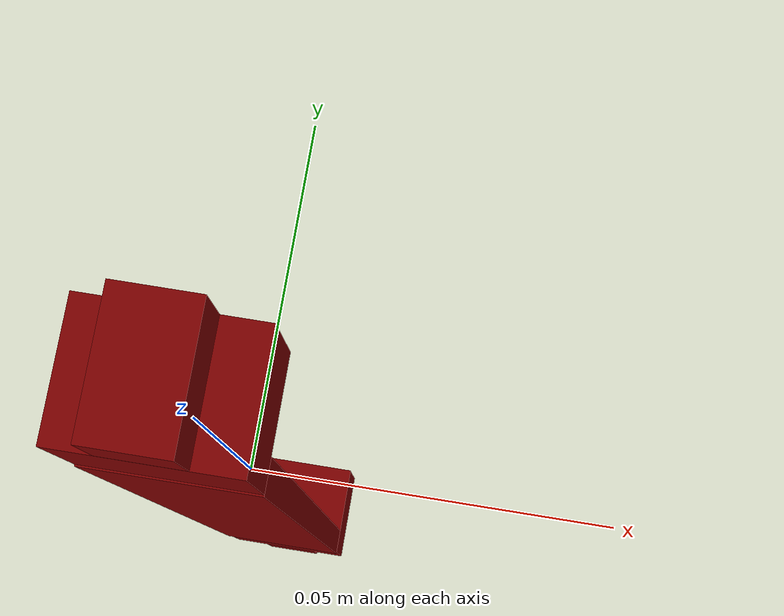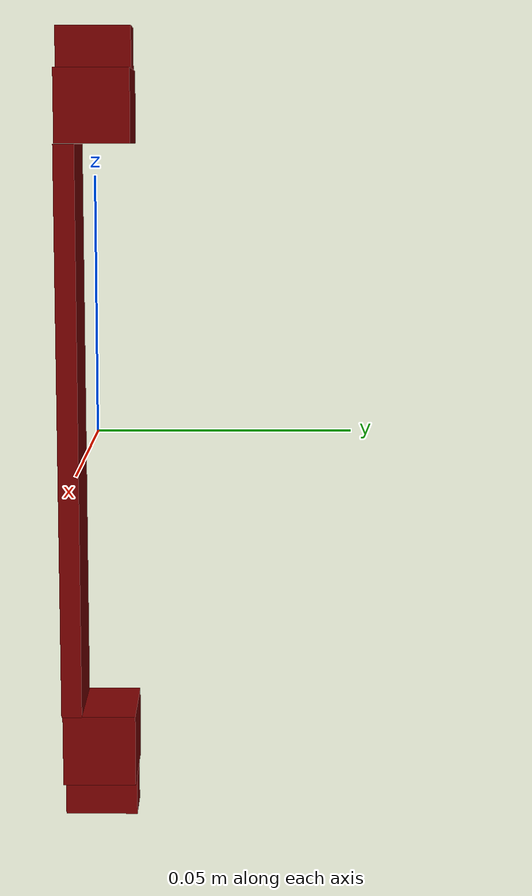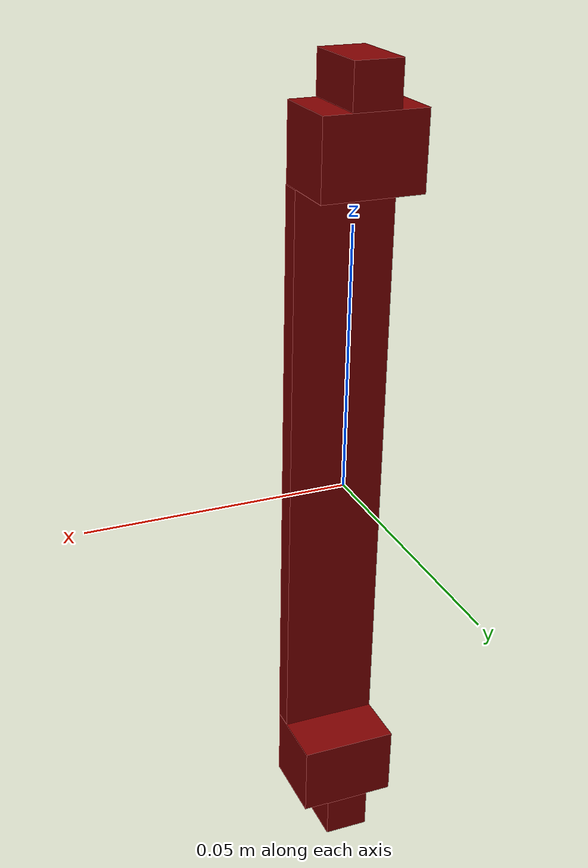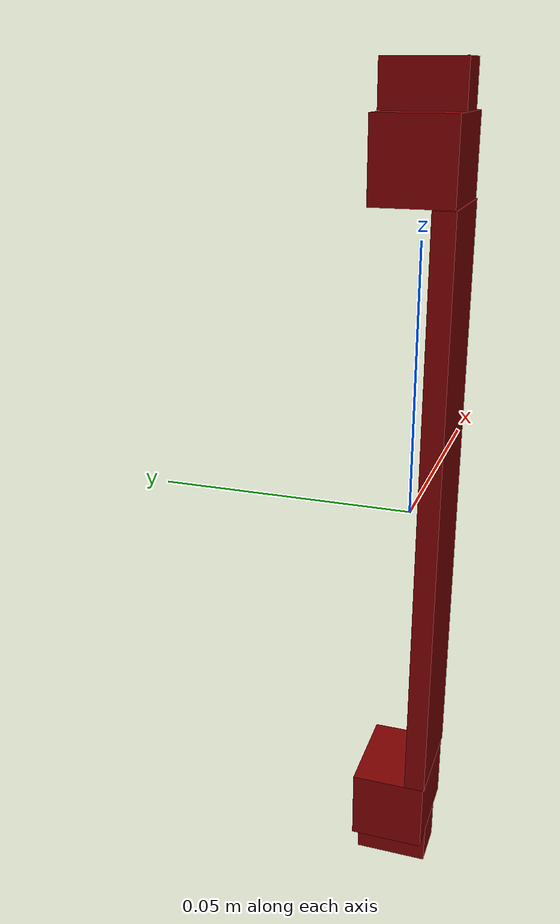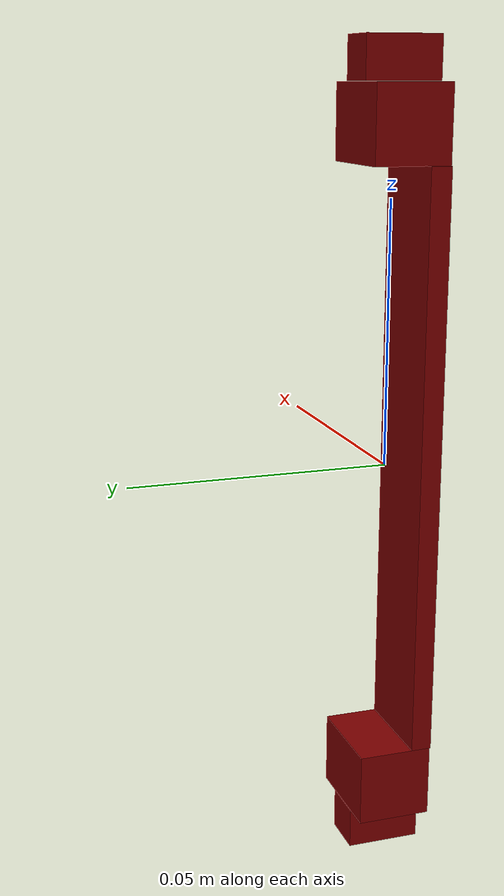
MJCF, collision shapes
<?xml version='1.0' encoding='UTF-8'?>
<mujoco model="model">
  <option timestep="0.002" gravity="0.0 0.0 -9.81"/>
  <compiler angle="radian"/>
  <asset>
    <mesh file="visuals/CabinetHandle037.obj" name="CabinetHandle037_vis"/>
    <texture file="visuals/T_BC001.png" name="tex" type="2d"/>
    <material name="mat" rgba="1 1 1 1.0" texture="tex" shininess="0.4472135901451111" specular="0.3103448502657381"/>
  </asset>
  <default>
    <default class="visual">
      <geom conaffinity="0" contype="0" group="1" type="mesh"/>
    </default>
    <default class="collision">
      <geom group="0" rgba="0.5 0 0 0.5" density="1.0" solref="0.004 1" solimp="0.998 0.998 0.001"/>
    </default>
    <default class="spawn">
      <geom group="0" rgba="1 1 1 0.5" contype="0" conaffinity="0"/>
      <site group="0" rgba="1 1 1 0.5"/>
    </default>
    <default class="region">
      <geom group="1" conaffinity="0" contype="0" rgba="0 1 0 0" mass="0"/>
    </default>
  </default>
  <worldbody>
    <body>
      <body name="object">
        <geom mesh="CabinetHandle037_vis" type="mesh" solimp="0.998 0.998 0.001" solref="0.001 1" friction="0.95 0.3 0.1" class="visual" material="mat"/>
        <geom type="box" pos="-2.9777684176224284e-05 -0.005289355292916298 -3.8582518754992634e-05" size="0.009496493265032768 0.0020103617571294308 0.056146491318941116" quat="1.0 0.0 0.0 0.0" class="collision"/>
        <geom type="box" pos="-2.9777684176224284e-05 0.00010454880248289555 0.06326448917388916" size="0.009496493265032768 0.0071960752829909325 0.007047103252261877" quat="1.0 0.0 0.0 0.0" class="collision"/>
        <geom type="box" pos="-3.179679697495885e-05 0.00010454880248289555 0.07436482608318329" size="0.004367112647742033 0.0071960752829909325 0.003963024355471134" quat="1.0 0.0 0.0 0.0" class="collision"/>
        <geom type="box" pos="-3.179679697495885e-05 0.00010454880248289555 -0.0742318406701088" size="0.004367112647742033 0.0071960752829909325 0.003963024355471134" quat="1.0 0.0 0.0 0.0" class="collision"/>
        <geom type="box" pos="-2.9777684176224284e-05 0.00010454880248289555 -0.06313150376081467" size="0.009496493265032768 0.0071960752829909325 0.007047103252261877" quat="1.0 0.0 0.0 0.0" class="collision"/>
        <geom class="region" name="reg_main" type="box" pos="-2.3283064365386963e-10 0.0 0.0" size="0.010357319213449956 0.007972992327064277 0.07918199694156647"/>
      </body>
    </body>
  </worldbody>
  <actuator/>
</mujoco>
